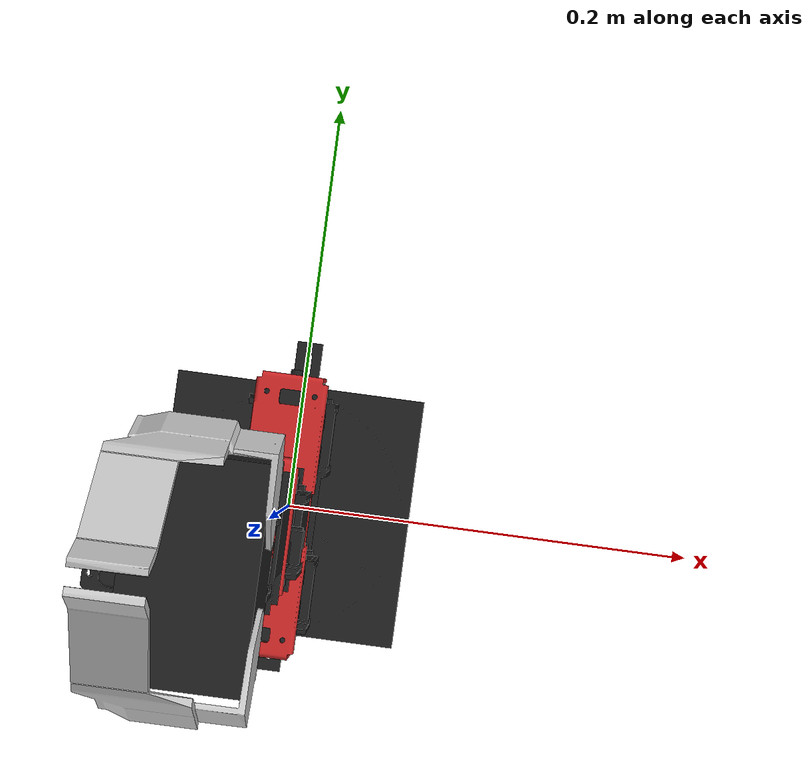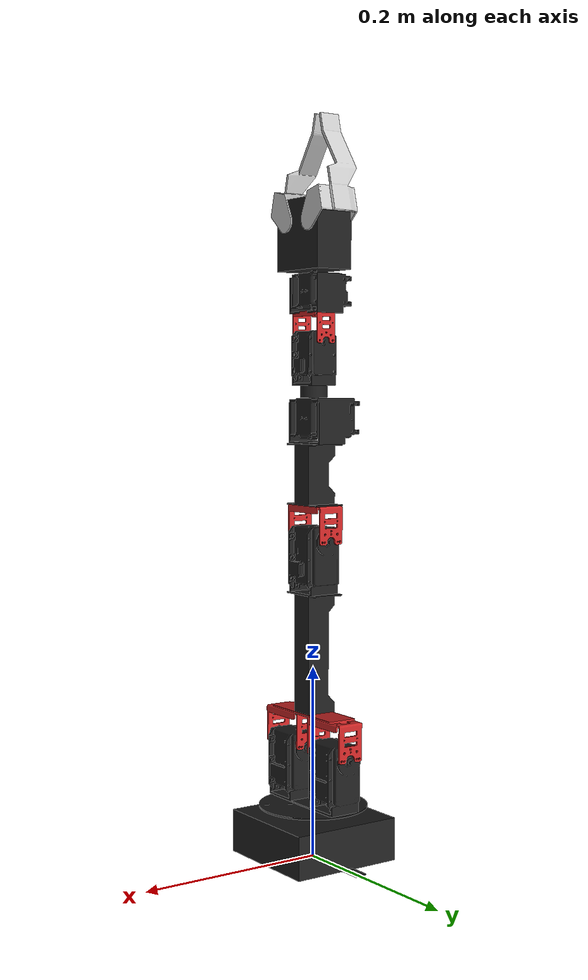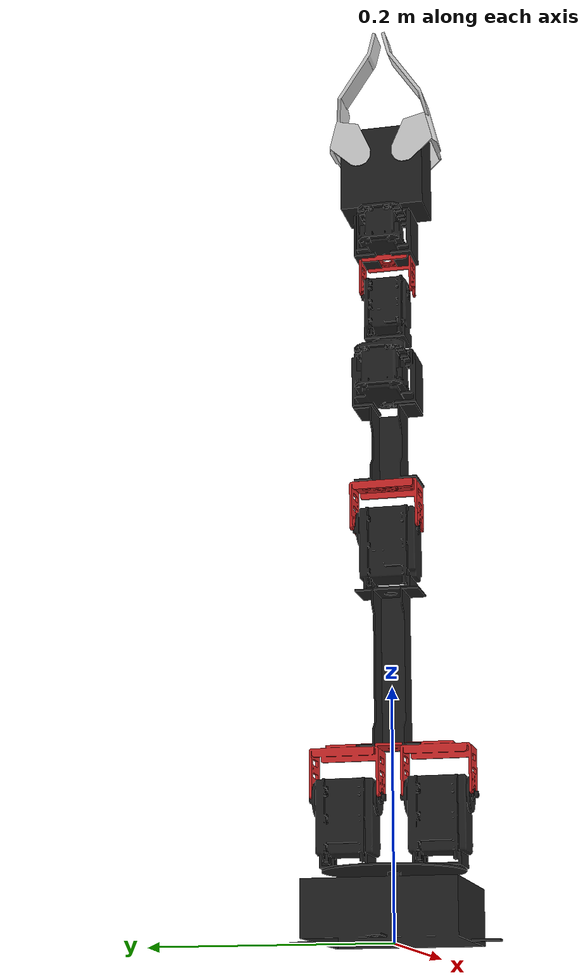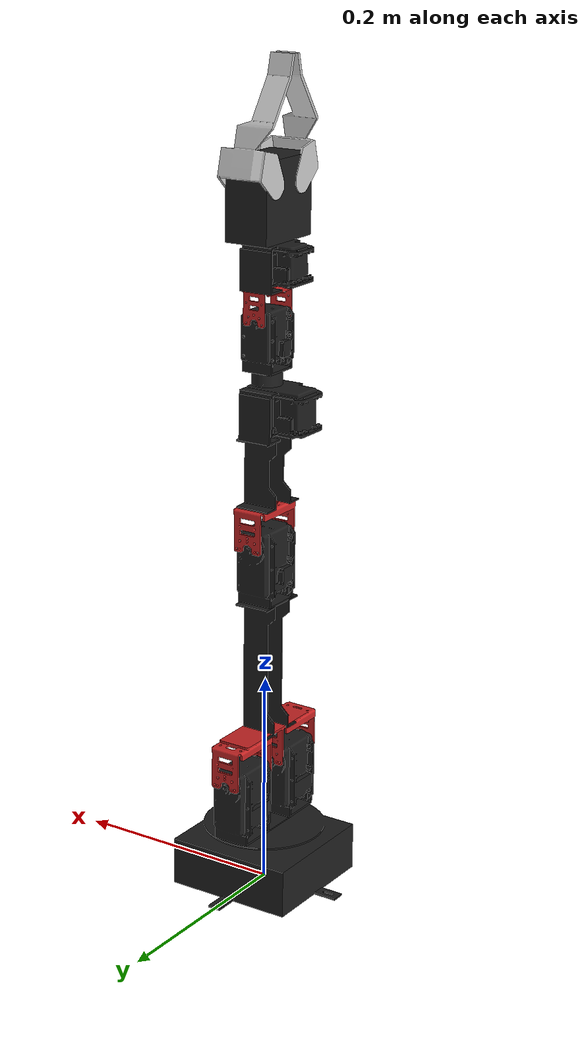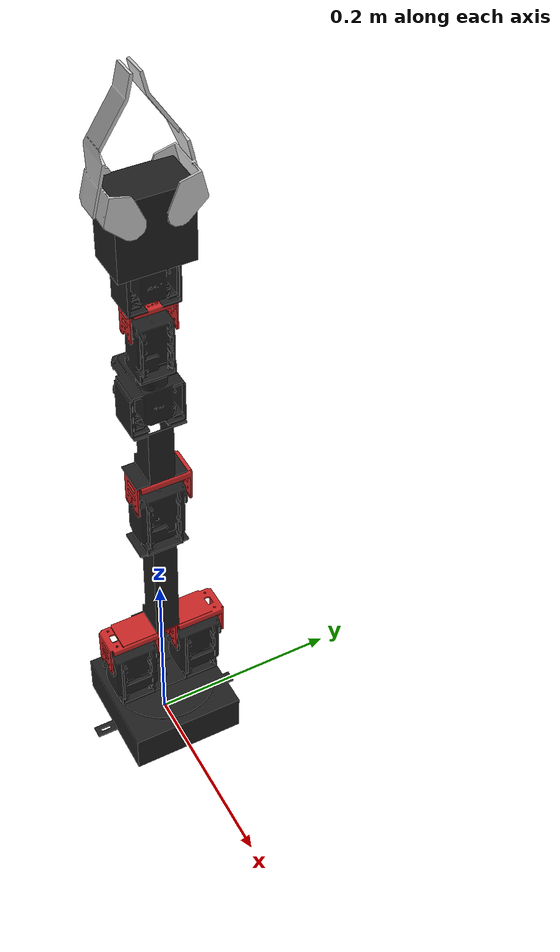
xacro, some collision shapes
<?xml version="1.0"?>
	<robot name="crustcrawler" xmlns:xacro="http://www.ros.org/wiki/xacro">
      <xacro:arg name="limit_scale" default="1"/> <!--increase for higher velocities-->

	  <!-- Constants for robot dimensions -->
	  <xacro:property name="PI" value="3.1415926535897931"/>
	  <xacro:property name="mass_1" value="0.125" />
	  <xacro:property name="mass_2" value="0.425" />
	  <xacro:property name="mass_3" value="0.01" />
	  <xacro:property name="mass_4" value="0.037" />
	  <xacro:property name="mass_5" value="0.196" />
	  <xacro:property name="mass_6" value="0.023" />
	  <xacro:property name="mass_7" value="0.187" />
	  <xacro:property name="mass_8" value="0.096" />
	  <xacro:property name="mass_9" value="0.128" />
	  <xacro:property name="mass_10" value="0.15" />
	  <xacro:property name="mass_11" value="0.02" />

	  <xacro:property name="width_1" value="0.14" />
	  <xacro:property name="width_2" value="0.03" />
	  <xacro:property name="width_3" value="0.03" />
	  <xacro:property name="width_4" value="0.032" />
	  <xacro:property name="width_5" value="0.028" />
	  <xacro:property name="width_6" value="0.03" />
	  <xacro:property name="width_7" value="0.05" />
	  <xacro:property name="width_8" value="0.024" />
	  <xacro:property name="width_9" value="0.05" />
	  <xacro:property name="width_10" value="0.036" />
	  <xacro:property name="width_11" value="0.04" />

	  <xacro:property name="length_2" value="0.115" />
	  <xacro:property name="length_3" value="0.13" />
	  <xacro:property name="length_4" value="0.05" />
	  <xacro:property name="length_5" value="0.045" />
	  <xacro:property name="length_6" value="0.05" />
	  <xacro:property name="length_7" value="0.06" />
	  <xacro:property name="length_8" value="0.04" />
	  <xacro:property name="length_9" value="0.05" />
	  <xacro:property name="length_10" value="0.06" />
	  <xacro:property name="length_11" value="0.044" />

	  <xacro:property name="height_1" value="0.06" />
	  <xacro:property name="height_2" value="0.07" />
	  <xacro:property name="height_3" value="0.03" />
	  <xacro:property name="height_4" value="0.126" />
	  <xacro:property name="height_5" value="0.063" />
	  <xacro:property name="height_6" value="0.063" />
	  <xacro:property name="height_7" value="0.048" />
	  <xacro:property name="height_8" value="0.054" />
	  <xacro:property name="height_9" value="0.055" />
	  <xacro:property name="height_10" value="0.053" />
	  <xacro:property name="height_11" value="0.11" />

	    <xacro:include filename="materials.urdf.xacro" />
	    <xacro:include filename="crustcrawler.gazebo" />

	        <!-- ****** JOINT DEFINITIONS ****** -->
		<link name="world"/>
		<link name="base">
		  <!--the default was empty, I added this to avoid warnings, in the same way as toms_baxter.urdf-->
		  <inertial>
			<origin rpy="0 0 0" xyz="0.000000 0.000000 0.000000"/>
			<mass value="1"/>
			<inertia ixx="1" ixy="0" ixz="0" iyy="1" iyz="0" izz="1"/>
		  </inertial>
		</link>
		<link name="the_gripper">
	      <inertial>
	        <origin rpy="0 0 0" xyz="0 0 0"/>
	        <mass value="0.0001"/>
	        <inertia ixx="0" ixy="0" ixz="0" iyy="0" iyz="0" izz="0.0"/>
	      </inertial>
	    </link>

	        <!-- Arm's base joint -->

	        <joint name="base_joint" type="fixed">
	            <origin xyz="0 0 0" rpy="0 0 ${PI}" />
	            <parent link="world"/>
	            <child link="base"/>
	        </joint>

	        <joint name="arm_base_joint" type="fixed">
	            <parent link="base"/>
	            <child link="link_joint_1"/>
	        </joint>

	        <!-- joint 1 -->
	        <joint name="joint_1" type="revolute" >
	            <origin xyz="0 0 0.055" rpy="0 0 0" />
	            <parent link="link_joint_1" />
	            <child link="link_joint_2"/>

	            <axis xyz="0 0 1"/>
	            <limit  lower="-1.8" upper="2.3" effort="${max(6.0*$(arg limit_scale),6.0)}" velocity="${1.7*$(arg limit_scale)}" />
	        </joint>

	        <!-- joint 2 -->
	        <joint name="joint_2" type="revolute" >
	            <origin xyz="0 -0.06 0.06" rpy="${PI/2} 0 0" />
	            <parent link="link_joint_2" />
	            <child link="connector_1"/>

	            <axis xyz="0 0 1"/>
	            <limit  lower="-1.6" upper="1.6" effort="${max(15*$(arg limit_scale),15)}" velocity="${1.7*$(arg limit_scale)}" />
	        </joint>

	        <!-- Fixed joint between connector_1 and the first girder -->
	        <joint name="connector_1_girder_1_joint" type="fixed">
	            <origin xyz="-0.0153 0.036 -0.06" rpy="-${PI/2} 0 0" />
	            <parent link="connector_1"/>
	            <child link="link_girder_1"/>
	        </joint>

	        <!-- Fixed joint between first girder joint_3 -->
	        <joint name="girder_1_joint_3_joint" type="fixed">
	            <origin xyz="0.0153 0 0.126" rpy="0 0 0" />
	            <parent link="link_girder_1"/>
	            <child link="link_joint_3"/>
	        </joint>

	        <!-- joint 3 -->
	        <joint name="joint_3" type="revolute" >
	            <origin xyz="0 -0.025 0.056" rpy="0 0 0" />
	            <parent link="link_joint_3" />
	            <child link="connector_2"/>

	            <axis xyz="0 1 0"/>
	            <limit  lower="-1.9" upper="1.9" effort="${max(8.4*$(arg limit_scale),8.4)}" velocity="${1.7*$(arg limit_scale)}" />
	        </joint>

	        <!-- Fixed joint between connector_2 and link_girder_2 -->
	        <joint name="connector_2_girder_2_joint" type="fixed">
	            <origin xyz="-0.0153 0.025 0.036" rpy="0 0 0" />
	            <parent link="connector_2"/>
	            <child link="link_girder_2"/>
	        </joint>

	        <!-- Fixed joint between second girder joint_4 -->
	        <joint name="girder_2_joint_4_joint" type="fixed">
	            <origin xyz="0.0153 0 0.0635" rpy="0 0 0" />
	            <parent link="link_girder_2"/>
	            <child link="link_joint_4"/>
	        </joint>

	        <!-- joint 4 -->
	        <joint name="joint_4" type="revolute" >
	            <origin xyz="0 0 0.06" rpy="0 0 0" />
	            <parent link="link_joint_4" />
	            <child link="link_joint_5"/>

	            <axis xyz="0 0 1"/>
	            <limit  lower="-3.14" upper="3.14" effort="${max(6.0*$(arg limit_scale),6.0)}" velocity="${1.7*$(arg limit_scale)}" />
	        </joint>

	        <!-- joint 5 -->
	        <joint name="joint_5" type="revolute" >
	            <origin xyz="0 -0.025 0.044" rpy="0 0 0" />
	            <parent link="link_joint_5" />
	            <child link="connector_3"/>

	            <axis xyz="0 1 0"/>
	            <limit  lower="-1.6" upper="1.6" effort="${max(2.5*$(arg limit_scale),2.5)}" velocity="${1.7*$(arg limit_scale)}" />
	        </joint>

	        <!-- Fixed joint between connector_3 and joint_6 -->
	        <joint name="connector_3_joint_6_joint" type="fixed">
	            <origin xyz="0 0.025 0.029" rpy="0 0 0" />
	            <parent link="connector_3"/>
	            <child link="link_joint_6"/>
	        </joint>

	        <!-- joint 6 -->
	        <joint name="joint_6" type="revolute" >
	            <origin xyz="0 0 0.053" rpy="0 0 0" />
	            <parent link="link_joint_6" />
	            <child link="link_gripper_base"/>

	            <axis xyz="0 0 1"/>
	            <limit  lower="-3.140" upper="3.140" effort="${max(2.5*$(arg limit_scale),2.5)}" velocity="${1.7*$(arg limit_scale)}" />
	        </joint>

	        <!-- Gripper right finger joint -->
	        <joint name="right_finger_joint" type="revolute">
	            <origin xyz="0 -0.02 0.04" rpy="0 0 0" />
	            <parent link="link_gripper_base"/>
	            <child link="link_right_finger" />

	            <axis xyz="1 0 0"/>
	            <!-- From 14 to -45 degrees -->
	            <limit  lower="-0.84" upper="0.84" effort="${max(1.8*$(arg limit_scale),1.8)}" velocity="${1.7*$(arg limit_scale)}" />
	        </joint>

	        <!-- Gripper left finger joint -->
	        <joint name="left_finger_joint" type="revolute">
	            <origin xyz="0 0.02 0.04" rpy="0 0 0" />
	            <parent link="link_gripper_base"/>
	            <child link="link_left_finger" />

	            <axis xyz="1 0 0"/>
	            <!-- From 14 to -45 degrees -->
	            <limit  lower="-0.84" upper="0.84" effort="${max(1.8*$(arg limit_scale),1.8)}" velocity="${1.7*$(arg limit_scale)}" />
	        </joint>

	        <joint name="crustcrawler_endpoint" type="fixed">
	      <origin rpy="0 0 0" xyz="0 0 0.13"/>
	      <parent link="link_gripper_base"/>
	      <child link="the_gripper"/>
	    </joint>

	        <!-- ****** LINK DEFINITIONS ****** -->
	        <link name="link_joint_1">
	            <visual>
	                <origin xyz="0 0 0" rpy="0 0 0" />
	                <geometry>
	                    <mesh filename="package://crustcrawler_description/meshes/collada/joint_1.dae"/>
	                </geometry>
	            </visual>

	            <collision>
	                <origin xyz="0 0 ${height_1/2.0}" rpy="0 0 0" />
	                <geometry>
	                    <box size=" 0.118 0.118 0.04 "></box>
	                </geometry>
	            </collision>

			<inertial>
	      			<origin xyz="0 0 0.043" rpy="0 0 0"/>
	      <mass value="${mass_1}"/>
	      <inertia
		  ixx="${mass_1 / 12.0 * (width_1*width_1 + height_1*height_1)}" ixy="0.0" ixz="0.0"
		  iyy="${mass_1 / 12.0 * (height_1*height_1 + width_1*width_1)}" iyz="0.0"
		  izz="${mass_1 / 12.0 * (width_1*width_1 + width_1*width_1)}"/>
	    		</inertial>
	        </link>

	        <link name="link_joint_2">

	            <visual>
	                <origin xyz="0 0 0" rpy="0 0 0" />
	                <geometry>
	                    <mesh filename="package://crustcrawler_description/meshes/collada/joint_2.dae"/>
	                </geometry>
	            </visual>

	            <collision>
	                <origin xyz="0 0 ${height_2/2.0}" rpy="0 0 0" />
	                <geometry>
	                    <box size=" 0.05 0.133 0.076 "></box>
	                </geometry>
	            </collision>

			<inertial>
	      			<origin xyz="0.112 0 0 " rpy="0 0 0"/>
	      <mass value="${mass_2}"/>
	      <inertia
		  ixx="${mass_2 / 12.0 * (width_2*width_2 + height_2*height_2)}" ixy="0.0" ixz="0.0"
		  iyy="${mass_2 / 12.0 * (height_2*height_2 + length_2*length_2)}" iyz="0.0"
		  izz="${mass_2 / 12.0 * (width_2*width_2 + length_2*length_2)}"/>
	    		</inertial>
	        </link>

	        <link name="connector_1">
	            <visual>
	                <origin xyz="0 0 -0.06" rpy="-${PI/2} 0 0" />
	                <geometry>
	                    <mesh filename="package://crustcrawler_description/meshes/collada/connecter_joint_2_girder_1.dae"/>
	                </geometry>
	            </visual>

	            <collision>
	                <origin xyz="0 0.06 ${height_3/2.0}" rpy="0 0 0" />
	                <geometry>
	                    <box size=" 0.05 0.133 0.043 "></box>
	                </geometry>
	            </collision>

	    <inertial>
	      <origin xyz="0 0 ${height_3}" rpy="0 0 0"/>
	      <mass value="${mass_3}"/>
	      <inertia
		  ixx="${mass_3 / 12.0 * (width_3*width_3 + height_3*height_3)}" ixy="0.0" ixz="0.0"
		  iyy="${mass_3 / 12.0 * (height_3*height_3 + width_3*width_3)}" iyz="0.0"
		  izz="${mass_3 / 12.0 * (width_3*width_3 + width_3*width_3)}"/>
	    </inertial>
	        </link>

	  <link name="link_girder_1">
	            <visual>
	                <origin xyz="0 0 0" rpy="0 0 0" />
	                <geometry>
	                    <mesh filename="package://crustcrawler_description/meshes/collada/link_50.dae"/>
	                </geometry>
	            </visual>

	            <collision>
	                <origin xyz="0.0153 0 ${height_4/2.0}" rpy="0 0 0" />
	                <geometry>
	                    <box size=" 0.035 0.035 0.13 "></box>
	                </geometry>
	            </collision>

			<inertial>
	      			<origin xyz="0.0785 0 0 " rpy="0 0 0"/>
	      <mass value="${mass_4}"/>
	      <inertia
		  ixx="${mass_4 / 12.0 * (width_4*width_4 + height_4*height_4)}" ixy="0.0" ixz="0.0"
		  iyy="${mass_4 / 12.0 * (height_4*height_4 + width_4*width_4)}" iyz="0.0"
		  izz="${mass_4 / 12.0 * (width_4*width_4 + width_4*width_4)}"/>
	    		</inertial>
	        </link>

	        <link name="link_joint_3">
	            <visual>
	                <origin xyz="0 0 0" rpy="0 0 0" />
	                <geometry>
	                    <mesh filename="package://crustcrawler_description/meshes/collada/joint_3.dae"/>
	                </geometry>
	            </visual>

	            <collision>
	                <origin xyz="0 0 ${height_5/2.0}" rpy="0 0 0" />
	                <geometry>
	                    <box size=" 0.05 0.09 0.073 "></box>
	                </geometry>
	            </collision>

			<inertial>
	      			<origin xyz="0.0 0 0.039 " rpy="0 0 0"/>
	      <mass value="${mass_5}"/>
	      <inertia
		  ixx="${mass_5 / 12.0 * (width_5*width_5 + height_5*height_5)}" ixy="0.0" ixz="0.0"
		  iyy="${mass_5 / 12.0 * (height_5*height_5 + width_5*width_5)}" iyz="0.0"
		  izz="${mass_5 / 12.0 * (width_5*width_5 + width_5*width_5)}"/>
	    		</inertial>
	        </link>

	        <link name="connector_2">
	            <visual>
	                <origin xyz="0 0.022 0" rpy="0 0 0" />
	                <geometry>
	                    <mesh filename="package://crustcrawler_description/meshes/collada/connecter_joint_3_girder_2.dae"/>
	                </geometry>
	            </visual>

	            <collision>
	                <origin xyz="0 0.022 ${height_3/2.0}" rpy="0 0 0" />
	                <geometry>
	                    <box size=" 0.05 0.09 0.043 "></box>
	                </geometry>
	            </collision>

	    <inertial>
	      <origin xyz="0 0 ${height_3}" rpy="0 0 0"/>
	      <mass value="${mass_3}"/>
	      <inertia
		  ixx="${mass_3 / 12.0 * (width_3*width_3 + height_3*height_3)}" ixy="0.0" ixz="0.0"
		  iyy="${mass_3 / 12.0 * (height_3*height_3 + width_3*width_3)}" iyz="0.0"
		  izz="${mass_3 / 12.0 * (width_3*width_3 + width_3*width_3)}"/>
	    </inertial>
	        </link>

	        <link name="link_girder_2">
	            <visual>
	                <origin xyz="0 0 0" rpy="0 0 0" />
	                <geometry>
	                    <mesh filename="package://crustcrawler_description/meshes/collada/link_25.dae"/>
	                </geometry>
	            </visual>

	            <collision>
	                <origin xyz="0.0153 0 ${height_6/2.0}" rpy="0 0 0" />
	                <geometry>
	                    <box size=" 0.035 0.035 0.065 "></box>
	                </geometry>
	            </collision>

			<inertial>
	      			<origin xyz="0.0325 0  0" rpy="0 0 0"/>
	      <mass value="${mass_6}"/>
	      <inertia
		  ixx="${mass_6 / 12.0 * (width_6*width_6 + height_6*height_6)}" ixy="0.0" ixz="0.0"
		  iyy="${mass_6 / 12.0 * (height_6*height_6 + width_6*width_6)}" iyz="0.0"
		  izz="${mass_6 / 12.0 * (width_6*width_6 + width_6*width_6)}"/>
	    		</inertial>
	        </link>

	        <link name="link_joint_4">
	            <visual>
	                <origin xyz="0 0 0" rpy="0 0 0" />
	                <geometry>
	                    <mesh filename="package://crustcrawler_description/meshes/collada/joint_4.dae"/>
	                </geometry>
	            </visual>

	            <collision>
	                <origin xyz="-0.02 0 ${height_7/2.0}" rpy="0 0 0" />
	                <geometry>
	                    <box size=" 0.09 0.07 0.07 "></box>
	                </geometry>
	            </collision>

			<inertial>
	      			<origin xyz="0.0325 0  0" rpy="0 0 0"/>
	      <mass value="${mass_7}"/>
	      <inertia
		  ixx="${mass_7 / 12.0 * (width_7*width_7 + height_7*height_7)}" ixy="0.0" ixz="0.0"
		  iyy="${mass_7 / 12.0 * (height_7*height_7 + length_7*length_7)}" iyz="0.0"
		  izz="${mass_7 / 12.0 * (width_7*width_7 + length_7*length_7)}"/>
	    		</inertial>
	        </link>

	        <link name="link_joint_5">
	            <visual>
	                <origin xyz="0 0 0" rpy="0 0 0" />
	                <geometry>
	                    <mesh filename="package://crustcrawler_description/meshes/collada/joint_5.dae"/>
	                </geometry>
	            </visual>

	            <collision>
	                <origin xyz="0 0 ${height_8/2.0}" rpy="0 0 0" />
	                <geometry>
	                    <box size=" 0.04 0.05 0.06 "></box>
	                </geometry>
	            </collision>

	    <inertial>
	      <origin xyz="0 0 ${height_8}" rpy="0 0 0"/>
	      <mass value="${mass_8}"/>
	      <inertia
		  ixx="${mass_8 / 12.0 * (width_8*width_8 + height_8*height_8)}" ixy="0.0" ixz="0.0"
		  iyy="${mass_8 / 12.0 * (height_8*height_8 + length_8*length_8)}" iyz="0.0"
		  izz="${mass_8 / 12.0 * (width_8*width_8 + length_8*length_8)}"/>
	    </inertial>
	        </link>

	        <link name="connector_3">
	            <visual>
	                <origin xyz="0 0.025 0" rpy="0 0 0" />
	                <geometry>
	                    <mesh filename="package://crustcrawler_description/meshes/collada/connecter_joint_5_joint_6.dae"/>
	                </geometry>
	            </visual>

	            <collision>
	                <origin xyz="0 0.025 ${height_3/2.0}" rpy="0 0 0" />
	                <geometry>
	                    <box size=" 0.04 0.05 0.06 "></box>
	                </geometry>
	            </collision>

			<inertial>
	      			<origin xyz="0.0325 0  0" rpy="0 0 0"/>
	      <mass value="${mass_3}"/>
	      <inertia
		  ixx="${mass_3 / 12.0 * (width_3*width_3 + height_3*height_3)}" ixy="0.0" ixz="0.0"
		  iyy="${mass_3 / 12.0 * (height_3*height_3 + width_3*width_3)}" iyz="0.0"
		  izz="${mass_3 / 12.0 * (width_3*width_3 + width_3*width_3)}"/>
	    		</inertial>
	        </link>

	        <link name="link_joint_6">
	            <visual>
	                <origin xyz="0 0 0" rpy="0 0 0" />
	                <geometry>
	                    <mesh filename="package://crustcrawler_description/meshes/collada/joint_6.dae"/>
	                </geometry>
	            </visual>

	            <collision>
	                <origin xyz="-0.01 0 ${height_9/2.0}" rpy="0 0 0" />
	                <geometry>
	                    <box size=" 0.06 0.05 0.06 "></box>
	                </geometry>
	            </collision>

			<inertial>
	      			<origin xyz="0.0325 0  0" rpy="0 0 0"/>
	      <mass value="${mass_9}"/>
	      <inertia
		  ixx="${mass_9 / 12.0 * (width_9*width_9 + height_9*height_9)}" ixy="0.0" ixz="0.0"
		  iyy="${mass_9 / 12.0 * (height_9*height_9 + length_9*length_9)}" iyz="0.0"
		  izz="${mass_9 / 12.0 * (width_9*width_9 + length_9*length_9)}"/>
	    		</inertial>
	        </link>

	        <link name="link_gripper_base">
	            <visual>
	                <origin xyz="0 0 0" rpy="0 0 0" />
	                <geometry>
	                    <mesh filename="package://crustcrawler_description/meshes/collada/gripper_base.dae"/>
	                </geometry>
	            </visual>

	            <collision>
	                <origin xyz="0 0 ${height_10/2.0}" rpy="0 0 0" />
	                <geometry>
	                    <box size=" 0.042 0.07 0.072 "></box>
	                </geometry>
	            </collision>
			<inertial>
	      			<origin xyz="0 0 0.035 " rpy="0 0 0"/>
	      <mass value="${mass_10}"/>
	      <inertia
		  ixx="${mass_10 / 12.0 * (width_10*width_10 + height_10*height_10)}" ixy="0.0" ixz="0.0"
		  iyy="${mass_10 / 12.0 * (height_10*height_10 + length_10*length_10)}" iyz="0.0"
		  izz="${mass_10 / 12.0 * (width_10*width_10 + length_10*length_10)}"/>
	    		</inertial>
	        </link>

	        <link name="link_right_finger">
	            <visual>
	                <origin xyz="0 0 0" rpy="0 0 0" />
	                <geometry>
	                    <mesh filename="package://crustcrawler_description/meshes/arm_right_finger.obj"/>
	                </geometry>
                    <material name="grey">
                        <color rgba="0.8 0.8 0.8 1"/>
                    </material>
	            </visual>

	            <collision>
                    <origin xyz="0 0 0" rpy="0 0 0" />
                    <geometry>
                        <mesh filename="package://crustcrawler_description/meshes/arm_right_finger.obj"/>
                    </geometry>
	            </collision>

	    <inertial>
	      <origin xyz="0 0 ${height_11/2.0}" rpy="0 0 0"/>
	      <mass value="${mass_11}"/>
	      <inertia
		  ixx="${mass_11 / 12.0 * (width_11*width_11 + height_11*height_11)}" ixy="0.0" ixz="0.0"
		  iyy="${mass_11 / 12.0 * (height_11*height_11 + length_11*length_11)}" iyz="0.0"
		  izz="${mass_11 / 12.0 * (width_11*width_11 + length_11*length_11)}"/>
	    </inertial>
	        </link>

	        <link name="link_left_finger">
	            <visual>
	                <origin xyz="0 0 0" rpy="0 0 0" />
	                <geometry>
	                    <mesh filename="package://crustcrawler_description/meshes/arm_left_finger.obj"/>
	                </geometry>
                    <material name="grey">
                        <color rgba="0.8 0.8 0.8 1"/>
                    </material>
	            </visual>

	            <collision>
                    <origin xyz="0 0 0" rpy="0 0 0" />
                    <geometry>
                        <mesh filename="package://crustcrawler_description/meshes/arm_left_finger.obj"/>
                    </geometry>
	            </collision>

	    <inertial>
	      <origin xyz="0 0 ${height_11/2.0}" rpy="0 0 0"/>
	      <mass value="${mass_11}"/>
	      <inertia
		  ixx="${mass_11 / 12.0 * (width_11*width_11 + height_11*height_11)}" ixy="0.0" ixz="0.0"
		  iyy="${mass_11 / 12.0 * (height_11*height_11 + length_11*length_11)}" iyz="0.0"
		  izz="${mass_11 / 12.0 * (width_11*width_11 + length_11*length_11)}"/>
	    </inertial>
	        </link>

	  <transmission name="joint_1_trans">
	    <type>transmission_interface/SimpleTransmission</type>
	    <joint name="joint_1">
	      <hardwareInterface>PositionJointInterface</hardwareInterface>
	    </joint>
	    <actuator name="joint_1_motor">
	      <hardwareInterface>PositionJointInterface</hardwareInterface>
	      <mechanicalReduction>1</mechanicalReduction>
	    </actuator>
	  </transmission>

	  <transmission name="joint_2_trans">
	    <type>transmission_interface/SimpleTransmission</type>
	    <joint name="joint_2">
	      <hardwareInterface>PositionJointInterface</hardwareInterface>
	    </joint>
	    <actuator name="joint_2_motor">
	      <hardwareInterface>PositionJointInterface</hardwareInterface>
	      <mechanicalReduction>1</mechanicalReduction>
	    </actuator>
	  </transmission>

	  <transmission name="joint_3_trans">
	    <type>transmission_interface/SimpleTransmission</type>
	    <joint name="joint_3">
	      <hardwareInterface>PositionJointInterface</hardwareInterface>
	    </joint>
	    <actuator name="joint_3_motor">
	      <hardwareInterface>PositionJointInterface</hardwareInterface>
	      <mechanicalReduction>1</mechanicalReduction>
	    </actuator>
	  </transmission>

	  <transmission name="joint_4_trans">
	    <type>transmission_interface/SimpleTransmission</type>
	    <joint name="joint_4">
	      <hardwareInterface>PositionJointInterface</hardwareInterface>
	    </joint>
	    <actuator name="joint_4_motor">
	      <hardwareInterface>PositionJointInterface</hardwareInterface>
	      <mechanicalReduction>1</mechanicalReduction>
	    </actuator>
	  </transmission>

	  <transmission name="joint_5_trans">
	    <type>transmission_interface/SimpleTransmission</type>
	    <joint name="joint_5">
	      <hardwareInterface>PositionJointInterface</hardwareInterface>
	    </joint>
	    <actuator name="joint_5_motor">
	      <hardwareInterface>PositionJointInterface</hardwareInterface>
	      <mechanicalReduction>1</mechanicalReduction>
	    </actuator>
	  </transmission>

	  <transmission name="joint_6_trans">
	    <type>transmission_interface/SimpleTransmission</type>
	    <joint name="joint_6">
	      <hardwareInterface>PositionJointInterface</hardwareInterface>
	    </joint>
	    <actuator name="joint_6_motor">
	      <hardwareInterface>PositionJointInterface</hardwareInterface>
	      <mechanicalReduction>1</mechanicalReduction>
	    </actuator>
	  </transmission>

	  <transmission name="right_finger_joint_trans">
	    <type>transmission_interface/SimpleTransmission</type>
	    <joint name="right_finger_joint">
	      <hardwareInterface>PositionJointInterface</hardwareInterface>
	    </joint>
	    <actuator name="right_finger_joint_motor">
	      <hardwareInterface>PositionJointInterface</hardwareInterface>
	      <mechanicalReduction>1</mechanicalReduction>
	    </actuator>
	  </transmission>

	  <transmission name="left_finger_joint_trans">
	    <type>transmission_interface/SimpleTransmission</type>
	    <joint name="left_finger_joint">
	      <hardwareInterface>PositionJointInterface</hardwareInterface>
	    </joint>
	    <actuator name="left_finger_joint_motor">
	      <hardwareInterface>PositionJointInterface</hardwareInterface>
	      <mechanicalReduction>1</mechanicalReduction>
	    </actuator>
	  </transmission>
	</robot>

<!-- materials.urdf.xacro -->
<robot>

    <material name="Black">
        <color rgba="0.0 0.0 0.0 1.0"/>
    </material>

    <material name="Blue">
        <color rgba="0.0 0.0 0.8 1.0"/>
    </material>

    <material name="Green">
        <color rgba="0.0 0.8 0.0 1.0"/>
    </material>

    <material name="Grey">
        <color rgba="0.7 0.7 0.7 1.0"/>
    </material>

    <material name="Grey2">
        <color rgba="0.9 0.9 0.9 1.0"/>
    </material>

    <material name="Red">
        <color rgba="0.8 0.0 0.0 1.0"/>
    </material>

    <material name="White">
        <color rgba="1.0 1.0 1.0 1.0"/>
    </material>

    <material name="GunMetalBrushedAluminum">
        <texture filename="package://crustcrawler_description/Media/materials/textures/gun_metal_brushed_aluminum.jpg" />
    </material>

</robot>
